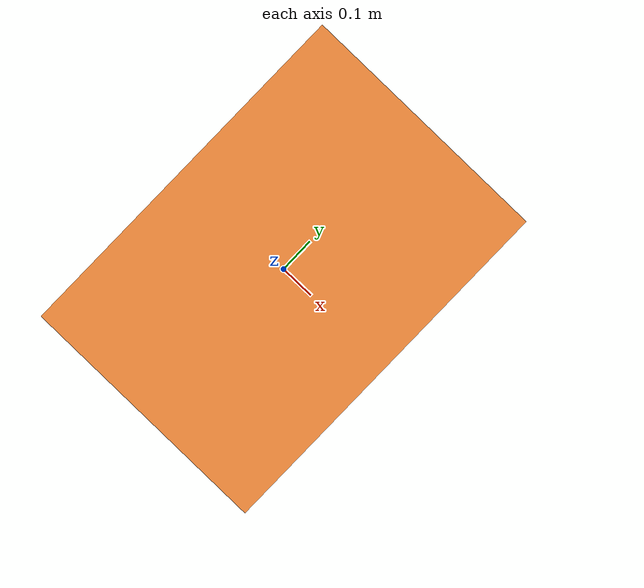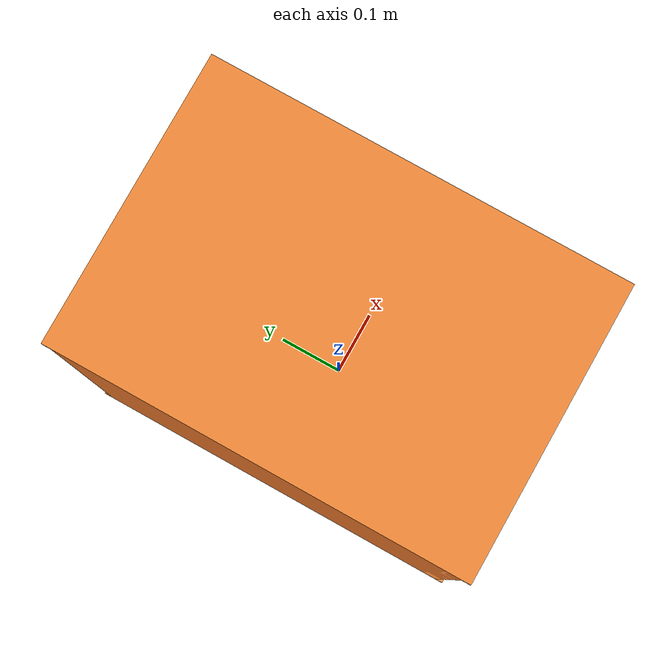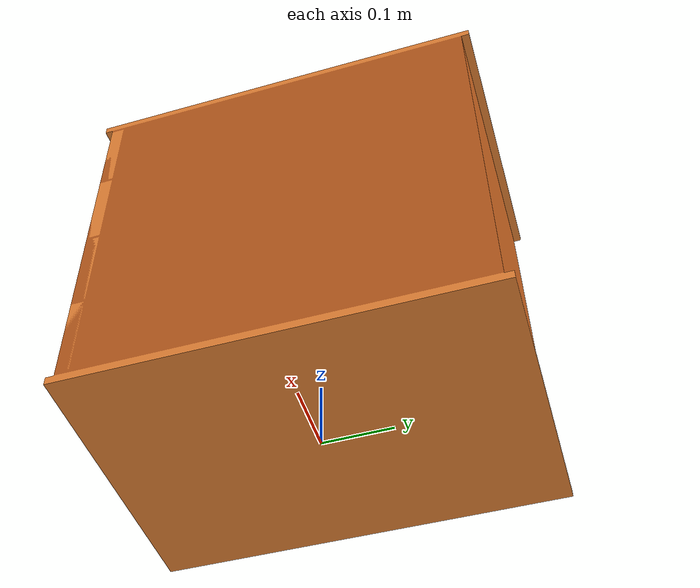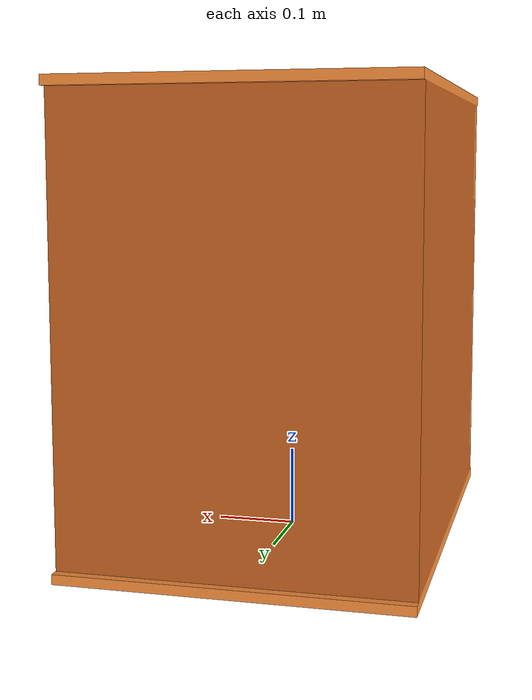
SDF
<sdf version='1.6'>
  <model name='Drawer_Light_Brown'>
    <link name='Drawer_Light_Brown'>
      <pose frame=''>0 0 0 0 -0 0</pose>
      <inertial>
        <pose frame=''>-0 -0.008544 0.2875 0 -0 0</pose>
        <mass>45</mass>
        <inertia>
          <ixx>8.159</ixx>
          <ixy>1.9709e-17</ixy>
          <ixz>-7.5566e-17</ixz>
          <iyy>6.0744</iyy>
          <iyz>-8.4879e-05</iyz>
          <izz>6.3113</izz>
        </inertia>
      </inertial>
      <collision name='Drawer_Light_Brown_collision'>
        <pose frame=''>0 0 0 1.5708 -0 0</pose>
        <geometry>
          <mesh>
            <scale>1 1 1</scale>
            <uri>model://Drawer_Light_Brown/meshes/Drawer_Light_Brown_new.dae</uri>
          </mesh>
        </geometry>
      </collision>
      <visual name='Drawer_Light_Brown_visual'>
        <pose frame=''>0 0 0 1.5708 -0 0</pose>
        <geometry>
          <mesh>
            <scale>1 1 1</scale>
            <uri>model://Drawer_Light_Brown/meshes/Drawer_Light_Brown_new.dae</uri>
          </mesh>
        </geometry>
      </visual>
    </link>
  </model>
</sdf>
